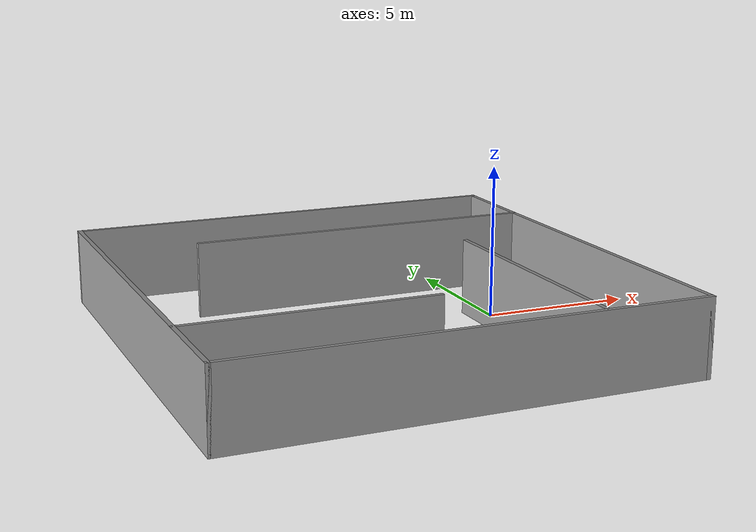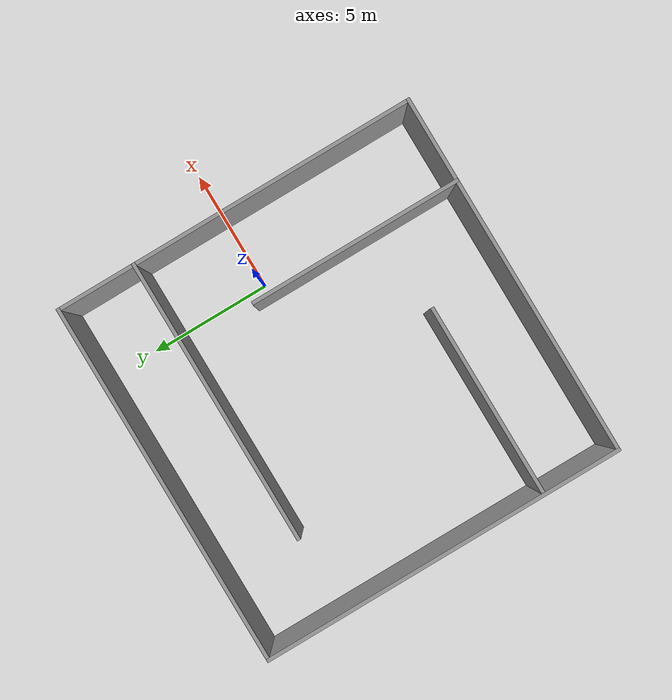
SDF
<?xml version='1.0'?>
<sdf version='1.7'>
  <model name='Untitled'>
    <pose>-4.64831 -0.582485 0 0 -0 0</pose>
    <link name='Wall_1'>
      <collision name='Wall_1_Collision'>
        <geometry>
          <box>
            <size>15 0.15 2.5</size>
          </box>
        </geometry>
        <pose>0 0 1.25 0 -0 0</pose>
      </collision>
      <visual name='Wall_1_Visual'>
        <pose>0 0 1.25 0 -0 0</pose>
        <geometry>
          <box>
            <size>15 0.15 2.5</size>
          </box>
        </geometry>
        <material>
          <script>
            <uri>file://media/materials/scripts/gazebo.material</uri>
            <name>Gazebo/Grey</name>
          </script>
          <ambient>1 1 1 1</ambient>
        </material>
        <meta>
          <layer>0</layer>
        </meta>
      </visual>
      <pose>-7.425 0 0 0 -0 -1.5708</pose>
    </link>
    <link name='Wall_11'>
      <collision name='Wall_11_Collision'>
        <geometry>
          <box>
            <size>8.75 0.15 2.5</size>
          </box>
        </geometry>
        <pose>0 0 1.25 0 -0 0</pose>
      </collision>
      <visual name='Wall_11_Visual'>
        <pose>0 0 1.25 0 -0 0</pose>
        <geometry>
          <box>
            <size>8.75 0.15 2.5</size>
          </box>
        </geometry>
        <material>
          <script>
            <uri>file://media/materials/scripts/gazebo.material</uri>
            <name>Gazebo/Grey</name>
          </script>
          <ambient>1 1 1 1</ambient>
        </material>
        <meta>
          <layer>0</layer>
        </meta>
      </visual>
      <pose>4.00195 -3.10869 0 0 -0 1.5708</pose>
    </link>
    <link name='Wall_13'>
      <collision name='Wall_13_Collision'>
        <geometry>
          <box>
            <size>11.75 0.15 2.5</size>
          </box>
        </geometry>
        <pose>0 0 1.25 0 -0 0</pose>
      </collision>
      <visual name='Wall_13_Visual'>
        <pose>0 0 1.25 0 -0 0</pose>
        <geometry>
          <box>
            <size>11.75 0.15 2.5</size>
          </box>
        </geometry>
        <material>
          <script>
            <uri>file://media/materials/scripts/gazebo.material</uri>
            <name>Gazebo/Grey</name>
          </script>
          <ambient>1 1 1 1</ambient>
        </material>
        <meta>
          <layer>0</layer>
        </meta>
      </visual>
      <pose>1.61906 4.22816 0 0 -0 3.14159</pose>
    </link>
    <link name='Wall_3'>
      <collision name='Wall_3_Collision'>
        <geometry>
          <box>
            <size>15 0.15 2.5</size>
          </box>
        </geometry>
        <pose>0 0 1.25 0 -0 0</pose>
      </collision>
      <visual name='Wall_3_Visual'>
        <pose>0 0 1.25 0 -0 0</pose>
        <geometry>
          <box>
            <size>15 0.15 2.5</size>
          </box>
        </geometry>
        <material>
          <script>
            <uri>file://media/materials/scripts/gazebo.material</uri>
            <name>Gazebo/Grey</name>
          </script>
          <ambient>1 1 1 1</ambient>
        </material>
        <meta>
          <layer>0</layer>
        </meta>
      </visual>
      <pose>0 7.425 0 0 -0 0</pose>
    </link>
    <link name='Wall_5'>
      <collision name='Wall_5_Collision'>
        <geometry>
          <box>
            <size>15 0.15 2.5</size>
          </box>
        </geometry>
        <pose>0 0 1.25 0 -0 0</pose>
      </collision>
      <visual name='Wall_5_Visual'>
        <pose>0 0 1.25 0 -0 0</pose>
        <geometry>
          <box>
            <size>15 0.15 2.5</size>
          </box>
        </geometry>
        <material>
          <script>
            <uri>file://media/materials/scripts/gazebo.material</uri>
            <name>Gazebo/Grey</name>
          </script>
          <ambient>1 1 1 1</ambient>
        </material>
        <meta>
          <layer>0</layer>
        </meta>
      </visual>
      <pose>0 -7.425 0 0 -0 0</pose>
    </link>
    <link name='Wall_7'>
      <collision name='Wall_7_Collision'>
        <geometry>
          <box>
            <size>15 0.15 2.5</size>
          </box>
        </geometry>
        <pose>0 0 1.25 0 -0 0</pose>
      </collision>
      <visual name='Wall_7_Visual'>
        <pose>0 0 1.25 0 -0 0</pose>
        <geometry>
          <box>
            <size>15 0.15 2.5</size>
          </box>
        </geometry>
        <material>
          <script>
            <uri>file://media/materials/scripts/gazebo.material</uri>
            <name>Gazebo/Grey</name>
          </script>
          <ambient>1 1 1 1</ambient>
        </material>
        <meta>
          <layer>0</layer>
        </meta>
      </visual>
      <pose>7.425 0 0 0 -0 1.5708</pose>
    </link>
    <link name='Wall_9'>
      <collision name='Wall_9_Collision'>
        <geometry>
          <box>
            <size>8 0.15 2.5</size>
          </box>
        </geometry>
        <pose>0 0 1.25 0 -0 0</pose>
      </collision>
      <visual name='Wall_9_Visual'>
        <pose>0 0 1.25 0 -0 0</pose>
        <geometry>
          <box>
            <size>8 0.15 2.5</size>
          </box>
        </geometry>
        <material>
          <script>
            <uri>file://media/materials/scripts/gazebo.material</uri>
            <name>Gazebo/Grey</name>
          </script>
          <ambient>1 1 1 1</ambient>
        </material>
        <meta>
          <layer>0</layer>
        </meta>
      </visual>
      <pose>-3.48916 -4.27032 0 0 -0 0</pose>
    </link>
    <static>1</static>
  </model>
</sdf>
